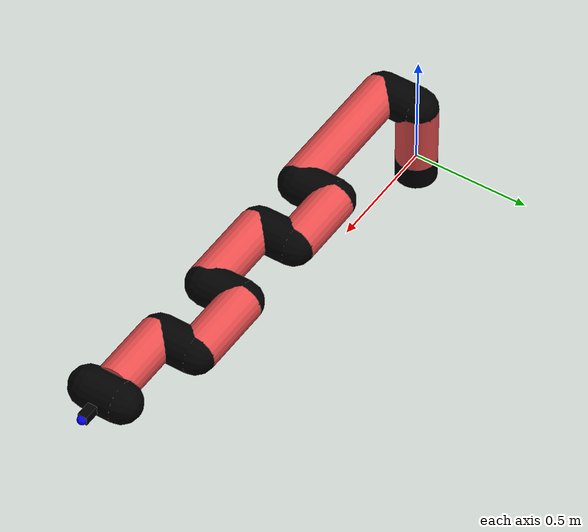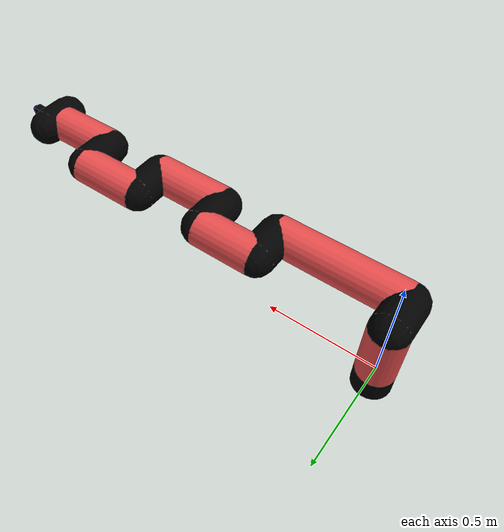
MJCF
<mujoco model="manipulator">
		<compiler angle="degree" coordinate="local" inertiafromgeom="auto" meshdir="meshes/"/>
		<option gravity="0 0 0" integrator="RK4" iterations="30" timestep="0.01"/>

		<default>
		<joint armature="1" limited="true" stiffness="10" damping="15" frictionloss="5.0"/>
		<geom conaffinity="1" condim="3" contype="1" friction=".5 .1 .1" margin="0.002"/>
		<motor ctrllimited="true"/>
		<position ctrllimited="true"/>
		</default>

		<asset>
		<texture builtin="gradient" height="100" rgb1="1.0 1.0 1.0" rgb2="1.0 1.0 1.0" type="skybox" width="100"/>
		<texture builtin="flat" height="32" name="arm_tex" rgb1="0.9 0.3 0.3" type="2d" width="32"/>
		<texture builtin="flat" height="32" name="gripper_tex" rgb1="0.0 0.0 0.0" type="cube" width="32"/>

		<material name="arm_mat" shininess="0.1" specular="0.1" texture="arm_tex"/>
		<material name="gripper_mat" shininess="1" specular="1" texture="gripper_tex"/>
		</asset>

		<worldbody>
		<light cutoff="45" diffuse=".8 .8 .8" dir="0 0.16 -1" directional="false" name="light" pos="0 -2.0 8.0" specular="0.3 0.3 0.3"/>

		<body name="base_link" pos="0 0 -0.1">
		<geom fromto="0 0 0 0 0 0.1" material="arm_mat" name="base_link" rgba="0.0 0.0 0.0 1" size="0.085" type="cylinder"/>
		</body>

		<body name="l1" pos="0 0 0">
<geom fromto="0 0 0 0 0 0.26" material="arm_mat" name="l1" rgba="0.9 0.3 0.3 1" size="0.085" type="cylinder"/>
<geom fromto="0 0 0.26 0 -0.16 0.26" material="arm_mat" name="l1_ex" rgba="0.0 0.0 0.0 1" size="0.085" type="capsule"/>
<joint axis="0 0 1" name="j1" pos="0 0 0" range="-90 90" damping="34.25" frictionloss="10.75"/>

<body name="l2" pos="0 -0.16 0.26">
<geom fromto="0 0 0 0.59 0 0" material="arm_mat" name="l2" rgba="0.9 0.3 0.3 1" size="0.085" type="cylinder"/>
<geom fromto="0.59 0 0 0.59 0.16 0" material="arm_mat" name="l2_ex" rgba="0.0 0.0 0.0 1" size="0.085" type="capsule"/>
<joint axis="0.0 1.0 0.0" name="j2" pos="0 0 0" range="-90 60" damping="27.03" frictionloss="11.58"/>

<body name="l3" pos="0.59 0.16 0">
<geom fromto="0 0 0 0.28 0 0" material="arm_mat" name="l3" rgba="0.9 0.3 0.3 1" size="0.085" type="cylinder"/>
<geom fromto="0.28 0 0 0.28 -0.16 0" material="arm_mat" name="l3_ex" rgba="0.0 0.0 0.0 1" size="0.085" type="capsule"/>
<joint axis="0.0 1.0 0.0" name="j3" pos="0 0 0" range="-30 60" damping="37.08" frictionloss="7.88"/>

<body name="l4" pos="0.28 -0.16 0">
<geom fromto="0 0 0 0.35 0 0" material="arm_mat" name="l4" rgba="0.9 0.3 0.3 1" size="0.085" type="cylinder"/>
<geom fromto="0.35 0 0 0.35 0.16 0" material="arm_mat" name="l4_ex" rgba="0.0 0.0 0.0 1" size="0.085" type="capsule"/>
<joint axis="0.0 1.0 0.0" name="j4" pos="0 0 0" range="-30 60" damping="23.44" frictionloss="11.8"/>

<body name="l5" pos="0.35 0.16 0">
<geom fromto="0 0 0 0.31 0 0" material="arm_mat" name="l5" rgba="0.9 0.3 0.3 1" size="0.085" type="cylinder"/>
<geom fromto="0.31 0 0 0.31 -0.16 0" material="arm_mat" name="l5_ex" rgba="0.0 0.0 0.0 1" size="0.085" type="capsule"/>
<joint axis="0.0 1.0 0.0" name="j5" pos="0 0 0" range="-30 60" damping="27.17" frictionloss="11.34"/>

<body name="l6" pos="0.31 -0.16 0">
<geom fromto="0 0 0 0.3 0 0" material="arm_mat" name="l6" rgba="0.9 0.3 0.3 1" size="0.085" type="cylinder"/>
<joint axis="0.0 1.0 0.0" name="j6" pos="0 0 0" range="-30 60" damping="28.01" frictionloss="10.24"/>

<body name="gripper" pos="0.3 0 0">
<geom fromto="0.05 -0.07 0 0.05 0.07 0" material="gripper_mat" name="gripper" rgba="0.0 0.0 0.0 1" size="0.085" type="capsule"/><joint axis="1 0 0" name="j7" pos="0 0 0" range="-90 90" damping="15" frictionloss="5.0"/><body name="finger" pos="0.1 0 0">
<geom fromto="0 0.0 0 0.1 0.0 0" material="gripper_mat" name="finger" rgba="0.0 0.0 0.0 1" size="0.020 0.06 0.06" type="box"/>
</body>
<site name="current" pos="0.2 0. 0.0" rgba="0. 0. 1.0 1" size="0.02" type="sphere"/>
</body>
</body>
</body>
</body>
</body>
</body>
</body>
</worldbody>
<actuator>
<motor ctrllimited="true" ctrlrange="-1.0 1.0" joint="j1" gear="85.14"/>
<motor ctrllimited="true" ctrlrange="-1.0 1.0" joint="j2" gear="82.68"/>
<motor ctrllimited="true" ctrlrange="-1.0 1.0" joint="j3" gear="83.51"/>
<motor ctrllimited="true" ctrlrange="-1.0 1.0" joint="j4" gear="81.08"/>
<motor ctrllimited="true" ctrlrange="-1.0 1.0" joint="j5" gear="65.75"/>
<motor ctrllimited="true" ctrlrange="-1.0 1.0" joint="j6" gear="68.25"/>
<motor ctrllimited="true" ctrlrange="-1.0 1.0" joint="j7" gear="80"/>
</actuator>
</mujoco>
